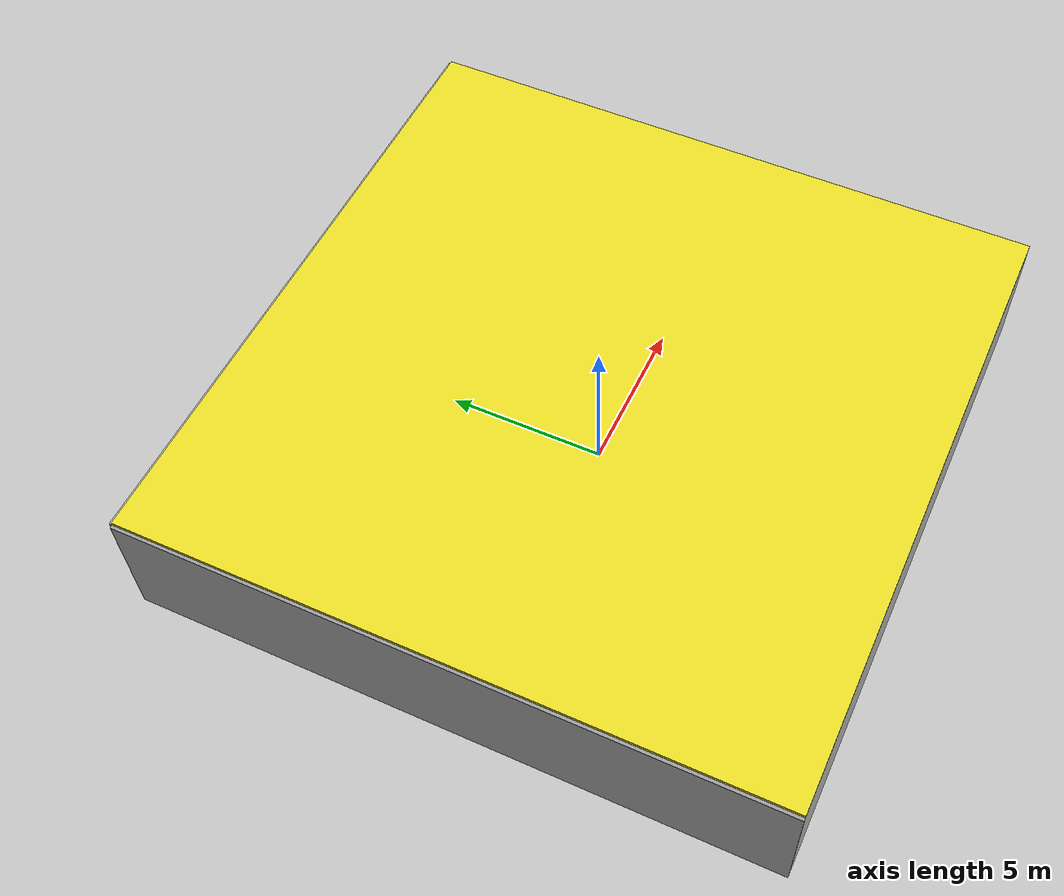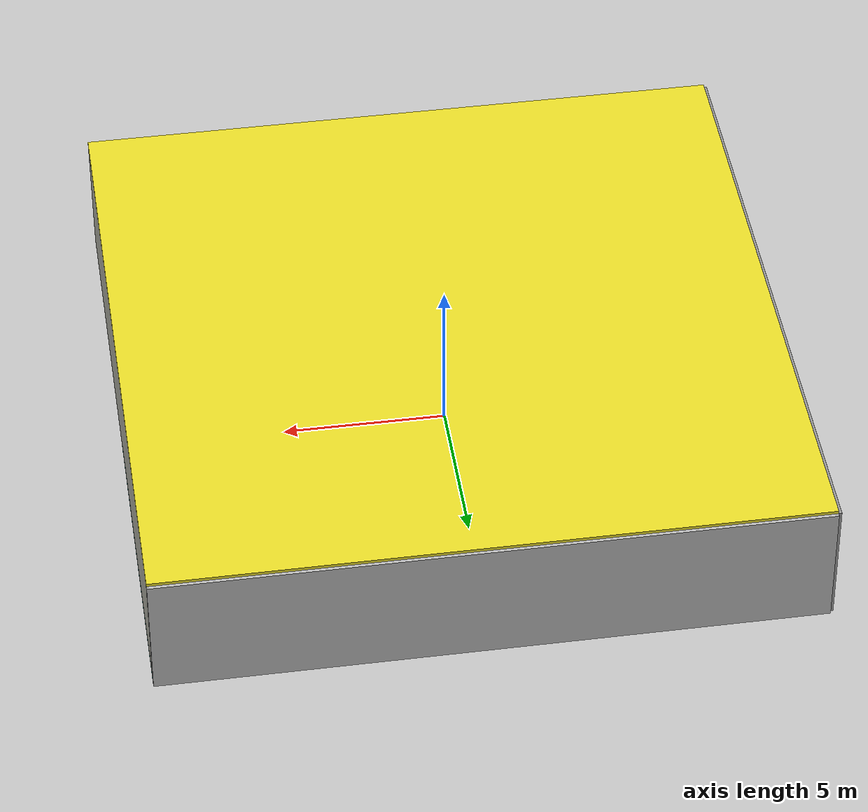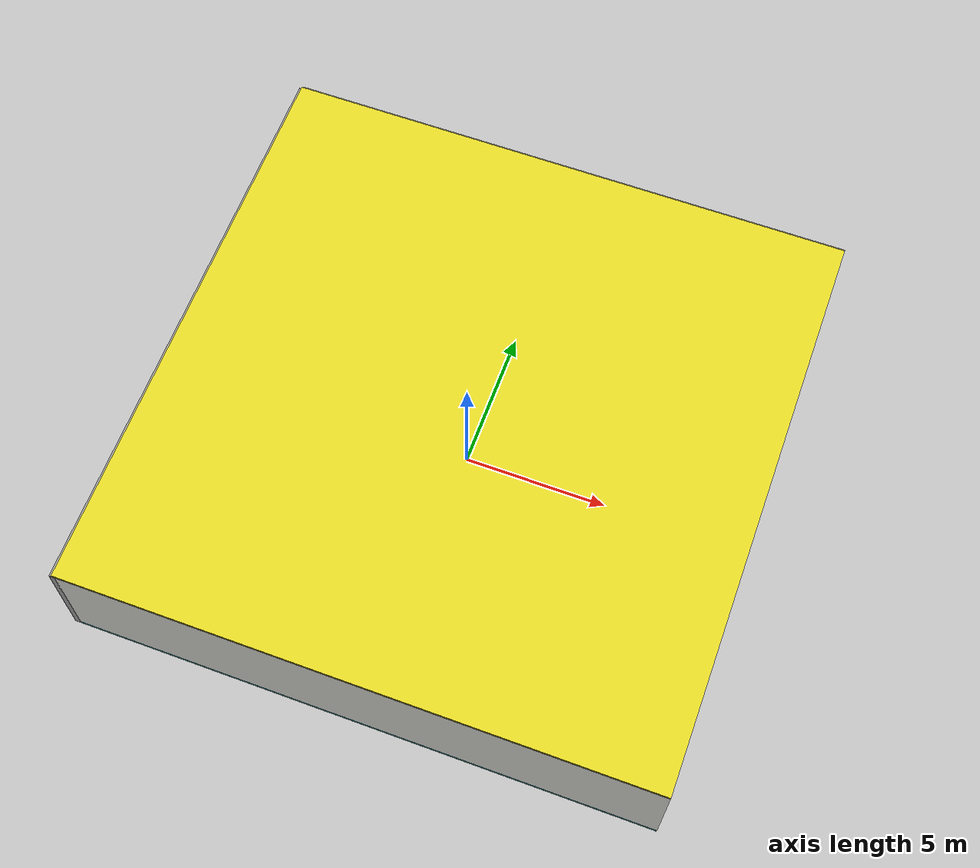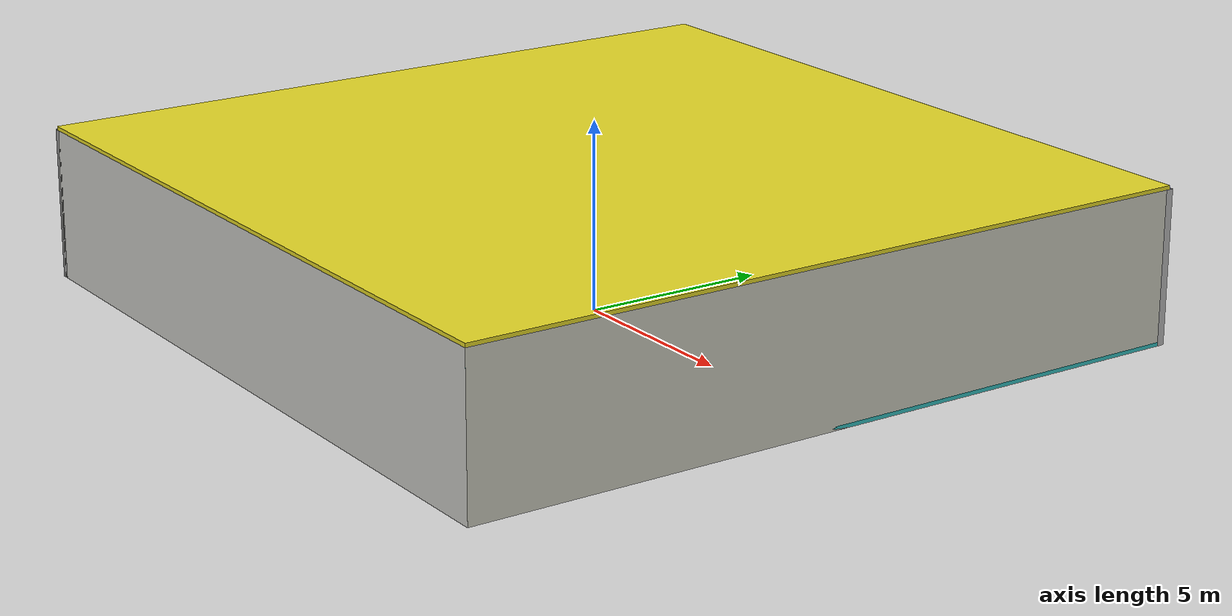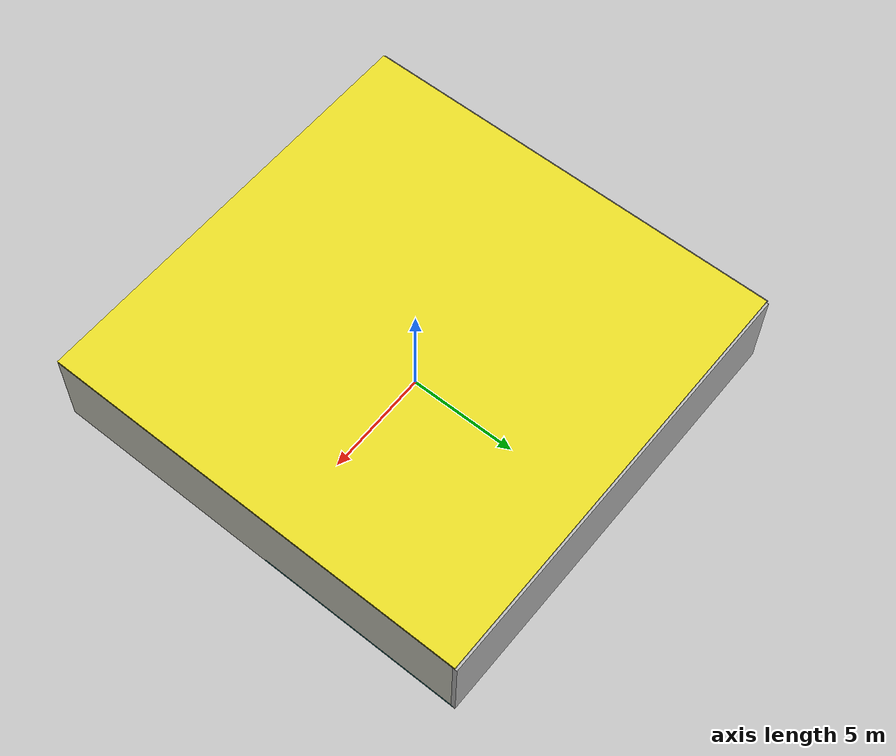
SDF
<sdf version="1.4">
 <world name="default">
  <physics type="ode">
   <max_step_size>0.001</max_step_size>
   <real_time_factor>1</real_time_factor>
   <real_time_update_rate>1000</real_time_update_rate>
   <gravity>0 0 -9.8</gravity>
  </physics>
  <scene><ambient>0.4 0.4 0.4 1</ambient><background>0.7 0.7 0.7 1</background><shadows>1</shadows></scene>
  <model name="Surrounding">
   <static>1</static>
   <link name="Ceiling">
    <collision name="Ceiling_Collision"><geometry><box><size>20 20 0.1</size></box></geometry></collision>
    <visual name="Ceiling_Visual">
     <geometry><box><size>20 20 0.1</size></box></geometry>
     <material>
      <script><uri>file://media/materials/scripts/gazebo.material</uri><name>Gazebo/Yellow</name></script>
     </material>
    </visual>
    <pose>0 0 4.05 0 0 0</pose>
   </link>
   <link name="Wall_South">
    <collision name="Wall_South_Collision">
     <geometry><box><size>20 0 4</size></box></geometry>
     <pose>0 0 2 0 -0 0</pose>
    </collision>
    <visual name="Wall_South_Visual">
     <pose>0 0 2 0 -0 0</pose>
     <geometry><box><size>20 0 4</size></box></geometry>
     <material>
      <script><uri>file://media/materials/scripts/gazebo.material</uri><name>Gazebo/CeilingTiled</name></script>
     </material>
    </visual>
    <velocity_decay><linear>0</linear><angular>0</angular></velocity_decay>
    <pose>0 -10 0 0 -0 0</pose>
   </link>
   <link name="Wall_East">
    <collision name="Wall_21_Collision">
     <geometry><box><size>20 0 4</size></box></geometry>
     <pose>0 0 2 0 -0 0</pose>
    </collision>
    <visual name="Wall_21_Visual">
     <pose>0 0 2 0 -0 0</pose>
     <geometry><box><size>20 0 4</size></box></geometry>
     <material>
      <script><uri>file://media/materials/scripts/gazebo.material</uri><name>Gazebo/PaintedWall</name></script>
     </material>
    </visual>
    <velocity_decay><linear>0</linear><angular>0</angular></velocity_decay>
    <pose>10 0 0 0 -0 1.5708</pose>
   </link>
   <link name="Wall_North">
    <collision name="Wall_22_Collision">
     <geometry><box><size>20 0.2 4</size></box></geometry>
     <pose>0 0 2 0 -0 0</pose>
    </collision>
    <visual name="Wall_22_Visual">
     <pose>0 0 2 0 -0 0</pose>
     <geometry><box><size>20 0.2 4</size></box></geometry>
     <material>
      <script><uri>file://media/materials/scripts/gazebo.material</uri><name>Gazebo/LightOn</name></script>
     </material>
    </visual>
    <velocity_decay><linear>0</linear><angular>0</angular></velocity_decay>
    <pose>0 10 0 0 -0 0</pose>
   </link>
   <link name="Wall_West">
    <collision name="Wall_23_Collision">
     <geometry><box><size>20 0.2 4</size></box></geometry>
     <pose>0 0 2 0 -0 0</pose>
    </collision>
    <visual name="Wall_23_Visual">
     <pose>0 0 2 0 -0 0</pose>
     <geometry><box><size>20 0.2 4</size></box></geometry>
     <material>
      <script><uri>file://media/materials/scripts/gazebo.material</uri><name>Gazebo/GreyGradientSky</name></script>
     </material>
    </visual>
    <velocity_decay><linear>0</linear><angular>0</angular></velocity_decay>
    <pose>-10 0 0 0 0 -1.5708</pose>
   </link>
   <link name="Ground_link">
    <collision name="collision">
     <pose>0 0 .05 0 -0 0</pose>
     <geometry><box><size>20 20 0.1</size></box></geometry>
    </collision>
    <visual name="visual">
     <pose>0 0 .05 0 -0 0</pose>
     <geometry><box><size>20 20 0.1</size></box></geometry>
     <material>
      <script><uri>file://media/materials/scripts/gazebo.material</uri><name>Gazebo/Turquoise</name></script>
     </material>
    </visual>
   </link>
   <static>1</static>
  </model>
  <spherical_coordinates>
   <surface_model>EARTH_WGS84</surface_model>
   <latitude_deg>0</latitude_deg>
   <longitude_deg>0</longitude_deg>
   <elevation>0</elevation>
   <heading_deg>0</heading_deg>
  </spherical_coordinates>
  <light name="lightball_0" type="diffuse">
   <diffuse>0.8 0.8 0.8 1</diffuse>
   <specular>0.2 0.2 0.2 1</specular>
   <attenuation>
    <range>100</range>
    <constant>0.7</constant>
    <linear>0.01</linear>
    <quadratic>0.001</quadratic>
   </attenuation>
   <direction>-0.5 0.1 -0.9</direction>
   <pose>-2.60018778493 -5.57800943252 3.02055128688 0 0 0</pose>
  </light>
  <light name="lightball_1" type="diffuse">
   <diffuse>0.8 0.8 0.8 1</diffuse>
   <specular>0.2 0.2 0.2 1</specular>
   <attenuation>
    <range>100</range>
    <constant>0.7</constant>
    <linear>0.01</linear>
    <quadratic>0.001</quadratic>
   </attenuation>
   <direction>-0.5 0.1 -0.9</direction>
   <pose>6.77412545506 -6.54922505309 1.55009286105 0 0 0</pose>
  </light>
  <light name="lightball_2" type="diffuse">
   <diffuse>0.8 0.8 0.8 1</diffuse>
   <specular>0.2 0.2 0.2 1</specular>
   <attenuation>
    <range>100</range>
    <constant>0.7</constant>
    <linear>0.01</linear>
    <quadratic>0.001</quadratic>
   </attenuation>
   <direction>-0.5 0.1 -0.9</direction>
   <pose>-7.53657904517 9.58824684657 3.60864633144 0 0 0</pose>
  </light>
  <light name="lightball_3" type="diffuse">
   <diffuse>0.8 0.8 0.8 1</diffuse>
   <specular>0.2 0.2 0.2 1</specular>
   <attenuation>
    <range>100</range>
    <constant>0.7</constant>
    <linear>0.01</linear>
    <quadratic>0.001</quadratic>
   </attenuation>
   <direction>-0.5 0.1 -0.9</direction>
   <pose>2.8463516746 -3.66571354514 1.35611981748 0 0 0</pose>
  </light>
  <light name="lightball_4" type="diffuse">
   <diffuse>0.8 0.8 0.8 1</diffuse>
   <specular>0.2 0.2 0.2 1</specular>
   <attenuation>
    <range>100</range>
    <constant>0.7</constant>
    <linear>0.01</linear>
    <quadratic>0.001</quadratic>
   </attenuation>
   <direction>-0.5 0.1 -0.9</direction>
   <pose>6.47806276945 -3.05620827066 3.45892097806 0 0 0</pose>
  </light>
  <light name="lightball_5" type="diffuse">
   <diffuse>0.8 0.8 0.8 1</diffuse>
   <specular>0.2 0.2 0.2 1</specular>
   <attenuation>
    <range>100</range>
    <constant>0.7</constant>
    <linear>0.01</linear>
    <quadratic>0.001</quadratic>
   </attenuation>
   <direction>-0.5 0.1 -0.9</direction>
   <pose>0.0981274254843 -8.95586853256 3.28570713357 0 0 0</pose>
  </light>
  <light name="lightball_6" type="diffuse">
   <diffuse>0.8 0.8 0.8 1</diffuse>
   <specular>0.2 0.2 0.2 1</specular>
   <attenuation>
    <range>100</range>
    <constant>0.7</constant>
    <linear>0.01</linear>
    <quadratic>0.001</quadratic>
   </attenuation>
   <direction>-0.5 0.1 -0.9</direction>
   <pose>-6.30820616514 4.54848313946 1.28263374753 0 0 0</pose>
  </light>
  <light name="lightball_7" type="diffuse">
   <diffuse>0.8 0.8 0.8 1</diffuse>
   <specular>0.2 0.2 0.2 1</specular>
   <attenuation>
    <range>100</range>
    <constant>0.7</constant>
    <linear>0.01</linear>
    <quadratic>0.001</quadratic>
   </attenuation>
   <direction>-0.5 0.1 -0.9</direction>
   <pose>0.719637482949 -1.78417911296 1.40742919905 0 0 0</pose>
  </light>
  <light name="lightball_8" type="diffuse">
   <diffuse>0.8 0.8 0.8 1</diffuse>
   <specular>0.2 0.2 0.2 1</specular>
   <attenuation>
    <range>100</range>
    <constant>0.7</constant>
    <linear>0.01</linear>
    <quadratic>0.001</quadratic>
   </attenuation>
   <direction>-0.5 0.1 -0.9</direction>
   <pose>-8.41295370296 -3.16121776375 0.645736148323 0 0 0</pose>
  </light>
  <light name="lightball_9" type="diffuse">
   <diffuse>0.8 0.8 0.8 1</diffuse>
   <specular>0.2 0.2 0.2 1</specular>
   <attenuation>
    <range>100</range>
    <constant>0.7</constant>
    <linear>0.01</linear>
    <quadratic>0.001</quadratic>
   </attenuation>
   <direction>-0.5 0.1 -0.9</direction>
   <pose>1.37426788242 4.74011048553 0.707701022724 0 0 0</pose>
  </light>
  <include>
   <uri>model://robocup_3Dsim_goal</uri>
   <pose>-6.76190388141 4.70604443251 0 0 0 2.98943840745</pose>
  </include>
  <include>
   <uri>model://textured_shapes</uri>
   <pose>-3.97628039979 -2.26717959828 0 0 0 0.352312389219</pose>
  </include>
  <include>
   <uri>model://textured_shapes</uri>
   <pose>-4.9759146676 2.6413854154 0 0 0 0.680216216632</pose>
  </include>
  <include><uri>model://cabinet</uri><pose>-5.5497569483 3.68202195692 0 0 0 0.286244788872</pose></include>
  <include>
   <uri>model://construction_cone</uri>
   <pose>1.06100261918 -2.56806009886 0 0 0 0.30005851246</pose>
  </include>
  <include><uri>model://cabinet</uri><pose>3.40784835398 -0.67225508086 0 0 0 2.10447992832</pose></include>
  <include><uri>model://table</uri><pose>5.123228008 5.07629319212 0 0 0 0.919350622422</pose></include>
  <include>
   <uri>model://construction_cone</uri>
   <pose>6.94200576965 3.48892687913 0 0 0 1.21899621987</pose>
  </include>
 </world>
</sdf>

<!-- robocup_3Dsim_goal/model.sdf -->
<sdf version="1.5">
  <model name="robocup_3d_goal">
    <static>true</static>
    <link name="left_post">
      <pose>0 1.05 0.45 0 0 0</pose>
      <collision name="collision">
        <geometry>
          <cylinder>
            <radius>0.05</radius>
            <length>0.9</length>
          </cylinder>
        </geometry>
      </collision>
      <visual name="visual">
        <geometry>
          <cylinder>
            <radius>0.05</radius>
            <length>0.9</length>
          </cylinder>
        </geometry>
        <material>
          <script>
            <uri>file://media/materials/scripts/gazebo.material</uri>
            <name>Gazebo/ZincYellow</name>
          </script>
        </material>
      </visual>
    </link>
    <link name="left_support_horiz_lower">
      <pose>0.30 1.05 0.01 0 0 0</pose>
      <collision name="collision">
        <geometry>
          <box>
            <size>0.50 0.02 0.02</size>
          </box>
        </geometry>
      </collision>
      <visual name="visual">
        <geometry>
          <box>
            <size>0.50 0.02 0.02</size>
          </box>
        </geometry>
        <material>
          <script>
            <uri>file://media/materials/scripts/gazebo.material</uri>
            <name>Gazebo/White</name>
          </script>
        </material>
      </visual>
    </link>
    <link name="left_support_horiz_upper">
      <pose>0.30 1.05 0.79 0 0 0</pose>
      <collision name="collision">
        <geometry>
          <box>
            <size>0.50 0.02 0.02</size>
          </box>
        </geometry>
      </collision>
      <visual name="visual">
        <geometry>
          <box>
            <size>0.50 0.02 0.02</size>
          </box>
        </geometry>
        <material>
          <script>
            <uri>file://media/materials/scripts/gazebo.material</uri>
            <name>Gazebo/White</name>
          </script>
        </material>
      </visual>
    </link>
    <link name="left_support_vertical">
      <pose>0.56 1.05 0.4 0 1.5708 0</pose>
      <collision name="collision">
        <geometry>
          <box>
            <size>0.80 0.02 0.02</size>
          </box>
        </geometry>
      </collision>
      <visual name="visual">
        <geometry>
          <box>
            <size>0.80 0.02 0.02</size>
          </box>
        </geometry>
        <material>
          <script>
            <uri>file://media/materials/scripts/gazebo.material</uri>
            <name>Gazebo/White</name>
          </script>
        </material>
      </visual>
    </link>
    <link name="right_support_horiz_lower">
      <pose>0.30 -1.05 0.01 0 0 0</pose>
      <collision name="collision">
        <geometry>
          <box>
            <size>0.50 0.02 0.02</size>
          </box>
        </geometry>
      </collision>
      <visual name="visual">
        <geometry>
          <box>
            <size>0.50 0.02 0.02</size>
          </box>
        </geometry>
        <material>
          <script>
            <uri>file://media/materials/scripts/gazebo.material</uri>
            <name>Gazebo/White</name>
          </script>
        </material>
      </visual>
    </link>
    <link name="right_support_horiz_upper">
      <pose>0.30 -1.05 0.79 0 0 0</pose>
      <collision name="collision">
        <geometry>
          <box>
            <size>0.50 0.02 0.02</size>
          </box>
        </geometry>
      </collision>
      <visual name="visual">
        <geometry>
          <box>
            <size>0.50 0.02 0.02</size>
          </box>
        </geometry>
        <material>
          <script>
            <uri>file://media/materials/scripts/gazebo.material</uri>
            <name>Gazebo/White</name>
          </script>
        </material>
      </visual>
    </link>
    <link name="right_support_vertical">
      <pose>0.56 -1.05 0.4 0 1.5708 0</pose>
      <collision name="collision">
        <geometry>
          <box>
            <size>0.80 0.02 0.02</size>
          </box>
        </geometry>
      </collision>
      <visual name="visual">
        <geometry>
          <box>
            <size>0.80 0.02 0.02</size>
          </box>
        </geometry>
        <material>
          <script>
            <uri>file://media/materials/scripts/gazebo.material</uri>
            <name>Gazebo/White</name>
          </script>
        </material>
      </visual>
    </link>
    <link name="center_support_horiz_lower">
      <pose>0.56 0 0.01 0 1.5708 0</pose>
      <collision name="collision">
        <geometry>
          <box>
            <size>0.02 2.08 0.02</size>
          </box>
        </geometry>
      </collision>
      <visual name="visual">
        <geometry>
          <box>
            <size>0.02 2.08 0.02</size>
          </box>
        </geometry>
        <material>
          <script>
            <uri>file://media/materials/scripts/gazebo.material</uri>
            <name>Gazebo/White</name>
          </script>
        </material>
      </visual>
    </link>
    <link name="center_support_horiz_upper">
      <pose>0.56 0 0.79 0 1.5708 0</pose>
      <collision name="collision">
        <geometry>
          <box>
            <size>0.02 2.08 0.02</size>
          </box>
        </geometry>
      </collision>
      <visual name="visual">
        <geometry>
          <box>
            <size>0.02 2.08 0.02</size>
          </box>
        </geometry>
        <material>
          <script>
            <uri>file://media/materials/scripts/gazebo.material</uri>
            <name>Gazebo/White</name>
          </script>
        </material>
      </visual>
    </link>
    <link name="right_post">
      <pose>0 -1.05 0.45 0 0 0</pose>
      <collision name="collision">
        <geometry>
          <cylinder>
            <radius>0.05</radius>
            <length>0.9</length>
          </cylinder>
        </geometry>
      </collision>
      <visual name="visual">
        <geometry>
          <cylinder>
            <radius>0.05</radius>
            <length>0.9</length>
          </cylinder>
        </geometry>
        <material>
          <script>
            <uri>file://media/materials/scripts/gazebo.material</uri>
            <name>Gazebo/ZincYellow</name>
          </script>
        </material>
      </visual>
    </link>
    <link name="crossbar">
      <pose>0 0 0.85 1.57 1.57 0</pose>
      <collision name="collision">
        <geometry>
          <cylinder>
            <radius>0.05</radius>
            <length>2.0</length>
          </cylinder>
        </geometry>
      </collision>
      <visual name="visual">
        <geometry>
          <cylinder>
            <radius>0.05</radius>
            <length>2.0</length>
          </cylinder>
        </geometry>
        <material>
          <script>
            <uri>file://media/materials/scripts/gazebo.material</uri>
            <name>Gazebo/ZincYellow</name>
          </script>
        </material>
      </visual>
    </link>
    <link name="center_net">
      <pose>0.56 0 0.40 0 0 0</pose>
      <collision name="collision">
        <geometry>
          <box>
            <size>0.01 2.1 0.80</size>
          </box>
        </geometry>
      </collision>
      <visual name="visual">
        <geometry>
          <box>
            <size>0.01 2.1 0.80</size>
          </box>
        </geometry>
        <material>
          <script>
            <uri>model://../model_source/models/robocup09_spl_field/materials/scripts/</uri>
            <uri>model://../model_source/models/robocup09_spl_field/materials/textures/</uri>
            <name>RoboCup/Net</name>
          </script>
        </material>
      </visual>
    </link>
    <link name="left_net">
      <pose>0.30 1.05 0.40 0 0 0</pose>
      <collision name="collision">
        <geometry>
          <box>
            <size>0.50 0.01 0.76</size>
          </box>
        </geometry>
      </collision>
      <visual name="visual">
        <geometry>
          <box>
            <size>0.50 0.01 0.76</size>
          </box>
        </geometry>
        <material>
          <script>
            <uri>model://../model_source/models/robocup09_spl_field/materials/scripts/</uri>
            <uri>model://../model_source/models/robocup09_spl_field/materials/textures/</uri>
            <name>RoboCup/Net</name>
          </script>
        </material>
      </visual>
    </link>
    <link name="right_net">
      <pose>0.30 -1.05 0.40 0 0 0</pose>
      <collision name="collision">
        <geometry>
          <box>
            <size>0.50 0.01 0.76</size>
          </box>
        </geometry>
      </collision>
      <visual name="visual">
        <geometry>
          <box>
            <size>0.50 0.01 0.76</size>
          </box>
        </geometry>
        <material>
          <script>
            <uri>model://../model_source/models/robocup09_spl_field/materials/scripts/</uri>
            <uri>model://../model_source/models/robocup09_spl_field/materials/textures/</uri>
            <name>RoboCup/Net</name>
          </script>
        </material>
      </visual>
    </link>
  </model>
</sdf>

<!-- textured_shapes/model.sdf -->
<sdf version="1.6">
  <model name="textured_shapes">
    <pose>0 0 0.5 0 0 0</pose>
    <link name="box">
      <pose>0 -1.5 0 0 0 0</pose>
      <collision name="collision">
        <geometry>
          <box>
            <size>1 1 1</size>
          </box>
        </geometry>
      </collision>
      <visual name="visual">
        <geometry>
          <box>
            <size>1 1 1</size>
          </box>
        </geometry>
        <material>
          <script>
            <uri>model://../model_source/models/textured_shapes/materials/scripts</uri>
            <uri>model://../model_source/models/textured_shapes/materials/textures</uri>
            <name>TexturedShape/Squares</name>
          </script>
        </material>
      </visual>
    </link>
    <link name="sphere">
      <collision name="collision">
        <geometry>
          <sphere>
            <radius>0.5</radius>
          </sphere>
        </geometry>
      </collision>
      <visual name="visual">
        <geometry>
          <sphere>
            <radius>0.5</radius>
          </sphere>
        </geometry>
        <material>
          <script>
            <uri>model://../model_source/models/textured_shapes/materials/scripts</uri>
            <uri>model://../model_source/models/textured_shapes/materials/textures</uri>
            <name>TexturedShape/Squares</name>
          </script>
        </material>
      </visual>
    </link>
    <link name="cylinder">
      <pose>0 1.5 0 0 0 0</pose>
      <collision name="collision">
        <geometry>
          <cylinder>
            <radius>0.5</radius>
            <length>1</length>
          </cylinder>
        </geometry>
      </collision>
      <visual name="visual">
        <geometry>
          <cylinder>
            <radius>0.5</radius>
            <length>1</length>
          </cylinder>
        </geometry>
        <material>
          <script>
            <uri>model://../model_source/models/textured_shapes/materials/scripts</uri>
            <uri>model://../model_source/models/textured_shapes/materials/textures</uri>
            <name>TexturedShape/Squares</name>
          </script>
        </material>
      </visual>
    </link>
  </model>
</sdf>

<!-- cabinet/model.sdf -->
<sdf version="1.5">
  <model name="cabinet">
    <static>true</static>
    <link name="cabinet_bottom_plate">
      <inertial>
        <pose>0 0 -1 0 0 0</pose>
        <inertia>
          <ixx>2.050000</ixx>
          <ixy>0</ixy>
          <ixz>0</ixz>
          <iyy>2.050000</iyy>
          <iyz>0</iyz>
          <izz>2.050000</izz>
        </inertia>
        <mass>25.000000</mass>
      </inertial>
      <collision name="cabinet_bottom_plate_geom">
        <pose>0 0 0.010000 0 0 0</pose>
        <geometry>
          <box>
            <size>0.450000 0.450000 0.020000</size>
          </box>
        </geometry>
      </collision>
      <visual name="cabinet_bottom_plate_geom_visual">
        <pose>0 0 0.010000 0 0 0</pose>
        <geometry>
          <box>
            <size>0.450000 0.450000 0.020000</size>
          </box>
        </geometry>
        <material>
          <script>
            <uri>model://media/materials/scripts/gazebo.material</uri>
            <name>Gazebo/Wood</name>
          </script>
        </material>
      </visual>
      <collision name="cabinet_bottom_plate_geom_cabinet_back_plate">
        <pose>0.235000 0 0.510000 0 0 0</pose>
        <geometry>
          <box>
            <size>0.020000 0.450000 1.020000</size>
          </box>
        </geometry>
      </collision>
      <visual name="cabinet_bottom_plate_geom_cabinet_back_plate_visual">
        <pose>0.235000 0 0.510000 0 0 0</pose>
        <geometry>
          <box>
            <size>0.020000 0.450000 1.020000</size>
          </box>
        </geometry>
        <material>
          <script>
            <uri>model://media/materials/scripts/gazebo.material</uri>
            <name>Gazebo/Wood</name>
          </script>
        </material>
      </visual>
      <collision name="cabinet_bottom_plate_geom_cabinet_left_plate">
        <pose>0 0.235000 0.510000 0 0 0</pose>
        <geometry>
          <box>
            <size>0.450000 0.020000 1.020000</size>
          </box>
        </geometry>
      </collision>
      <visual name="cabinet_bottom_plate_geom_cabinet_left_plate_visual">
        <pose>0 0.235000 0.510000 0 0 0</pose>
        <geometry>
          <box>
            <size>0.450000 0.020000 1.020000</size>
          </box>
        </geometry>
        <material>
          <script>
            <uri>model://media/materials/scripts/gazebo.material</uri>
            <name>Gazebo/Wood</name>
          </script>
        </material>
      </visual>
      <collision name="cabinet_bottom_plate_geom_cabinet_middle_plate">
        <pose>0 0 0.510000 0 0 0</pose>
        <geometry>
          <box>
            <size>0.450000 0.450000 0.020000</size>
          </box>
        </geometry>
      </collision>
      <visual name="cabinet_bottom_plate_geom_cabinet_middle_plate_visual">
        <pose>0 0 0.510000 0 0 0</pose>
        <geometry>
          <box>
            <size>0.450000 0.450000 0.020000</size>
          </box>
        </geometry>
        <material>
          <script>
            <uri>model://media/materials/scripts/gazebo.material</uri>
            <name>Gazebo/Wood</name>
          </script>
        </material>
      </visual>
      <collision name="cabinet_bottom_plate_geom_cabinet_right_plate">
        <pose>0 -0.235000 0.510000 0 0 0</pose>
        <geometry>
          <box>
            <size>0.450000 0.020000 1.020000</size>
          </box>
        </geometry>
      </collision>
      <visual name="cabinet_bottom_plate_geom_cabinet_right_plate_visual">
        <pose>0 -0.235000 0.510000 0 0 0</pose>
        <geometry>
          <box>
            <size>0.450000 0.020000 1.020000</size>
          </box>
        </geometry>
        <material>
          <script>
            <uri>model://media/materials/scripts/gazebo.material</uri>
            <name>Gazebo/Wood</name>
          </script>
        </material>
      </visual>
      <collision name="cabinet_bottom_plate_geom_cabinet_top_plate">
        <pose>0 0 1.010000 0 0 0</pose>
        <geometry>
          <box>
            <size>0.450000 0.450000 0.020000</size>
          </box>
        </geometry>
      </collision>
      <visual name="cabinet_bottom_plate_geom_cabinet_top_plate_visual">
        <pose>0 0 1.010000 0 0 0</pose>
        <geometry>
          <box>
            <size>0.450000 0.450000 0.020000</size>
          </box>
        </geometry>
        <material>
          <script>
            <uri>model://media/materials/scripts/gazebo.material</uri>
            <name>Gazebo/Wood</name>
          </script>
        </material>
      </visual>
    </link>
  </model>
</sdf>

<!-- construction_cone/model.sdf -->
<sdf version="1.5">
  <model name="Construction Cone">
    <link name="link">
      <collision name="collision">
        <geometry>
          <mesh>
            <scale>10 10 10</scale>
            <uri>file://isr-testbed/construction_cone/meshes/construction_cone.dae</uri>
          </mesh>
        </geometry>
      </collision>
      <visual name="visual">
        <geometry>
          <mesh>
            <scale>10 10 10</scale>
            <uri>file://isr-testbed/construction_cone/meshes/construction_cone.dae</uri>
          </mesh>
        </geometry>
      </visual>
    </link>
  </model>
</sdf>

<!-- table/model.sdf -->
<sdf version="1.5">
  <model name="table">
    <static>true</static>
    <link name="link">
      <collision name="surface">
        <pose>0 0 1.0 0 0 0</pose>
        <geometry>
          <box>
            <size>1.5 0.8 0.03</size>
          </box>
        </geometry>
        <surface>
          <friction>
            <ode>
              <mu>0.6</mu>
              <mu2>0.6</mu2>
            </ode>
          </friction>
        </surface>
      </collision>
      <visual name="visual1">
        <pose>0 0 1.0 0 0 0</pose>
        <geometry>
          <box>
            <size>1.5 0.8 0.03</size>
          </box>
        </geometry>
        <material>
          <script>
            <uri>model://media/materials/scripts/gazebo.material</uri>
            <name>Gazebo/Wood</name>
          </script>
        </material>
      </visual>
      <collision name="front_left_leg">
        <pose>0.68 0.38 0.5 0 0 0</pose>
        <geometry>
          <cylinder>
            <radius>0.02</radius>
            <length>1.0</length>
          </cylinder>
        </geometry>
      </collision>
      <visual name="front_left_leg">
        <pose>0.68 0.38 0.5 0 0 0</pose>
        <geometry>
          <cylinder>
            <radius>0.02</radius>
            <length>1.0</length>
          </cylinder>
        </geometry>
        <material>
          <script>
            <uri>model://media/materials/scripts/gazebo.material</uri>
            <name>Gazebo/Grey</name>
          </script>
        </material>
      </visual>
      <collision name="front_right_leg">
        <pose>0.68 -0.38 0.5 0 0 0</pose>
        <geometry>
          <cylinder>
            <radius>0.02</radius>
            <length>1.0</length>
          </cylinder>
        </geometry>
      </collision>
      <visual name="front_right_leg">
        <pose>0.68 -0.38 0.5 0 0 0</pose>
        <geometry>
          <cylinder>
            <radius>0.02</radius>
            <length>1.0</length>
          </cylinder>
        </geometry>
        <material>
          <script>
            <uri>model://media/materials/scripts/gazebo.material</uri>
            <name>Gazebo/Grey</name>
          </script>
        </material>
      </visual>
      <collision name="back_right_leg">
        <pose>-0.68 -0.38 0.5 0 0 0</pose>
        <geometry>
          <cylinder>
            <radius>0.02</radius>
            <length>1.0</length>
          </cylinder>
        </geometry>
      </collision>
      <visual name="back_right_leg">
        <pose>-0.68 -0.38 0.5 0 0 0</pose>
        <geometry>
          <cylinder>
            <radius>0.02</radius>
            <length>1.0</length>
          </cylinder>
        </geometry>
        <material>
          <script>
            <uri>model://media/materials/scripts/gazebo.material</uri>
            <name>Gazebo/Grey</name>
          </script>
        </material>
      </visual>
      <collision name="back_left_leg">
        <pose>-0.68 0.38 0.5 0 0 0</pose>
        <geometry>
          <cylinder>
            <radius>0.02</radius>
            <length>1.0</length>
          </cylinder>
        </geometry>
      </collision>
      <visual name="back_left_leg">
        <pose>-0.68 0.38 0.5 0 0 0</pose>
        <geometry>
          <cylinder>
            <radius>0.02</radius>
            <length>1.0</length>
          </cylinder>
        </geometry>
        <material>
          <script>
            <uri>model://media/materials/scripts/gazebo.material</uri>
            <name>Gazebo/Grey</name>
          </script>
        </material>
      </visual>
    </link>
  </model>
</sdf>
